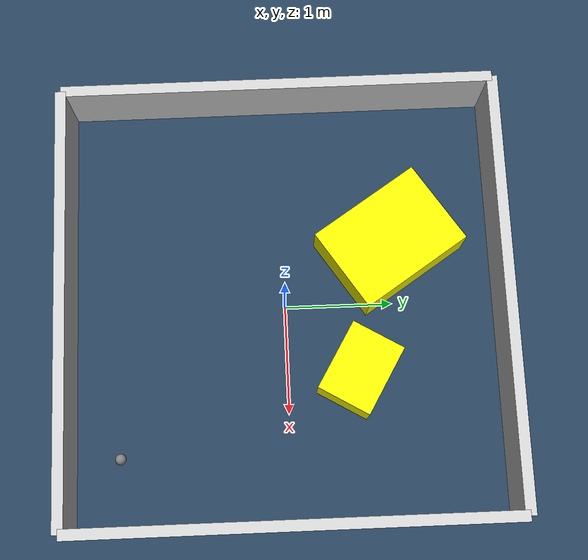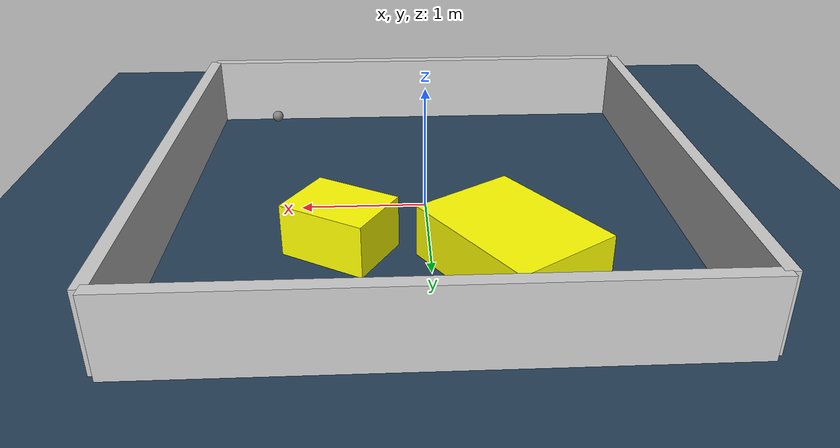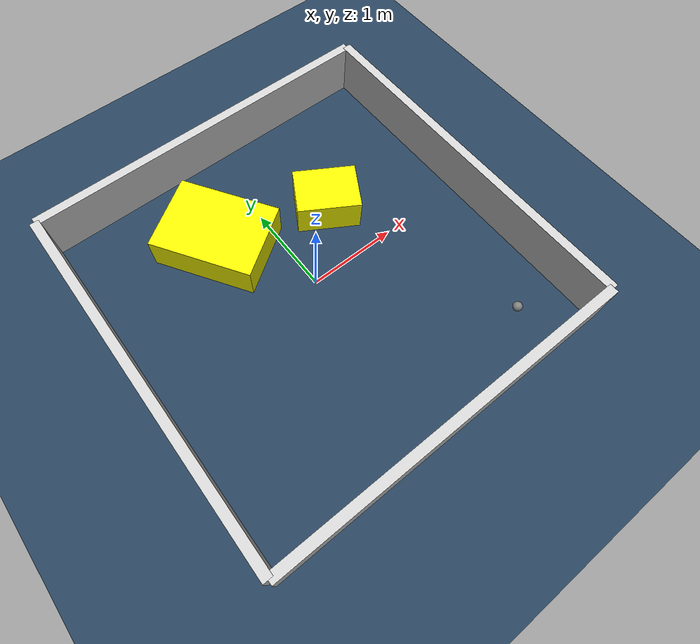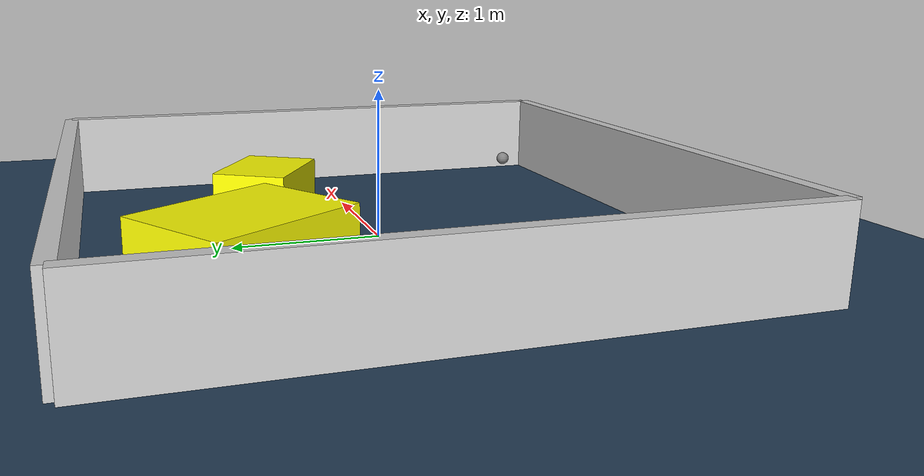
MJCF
<?xml version="1.0" ?>
<mujoco model="generated_environment">
  <option timestep="0.01" integrator="RK4" cone="elliptic"/>
  <default>
    <geom density="1"/>
  </default>
  <asset>
    <texture builtin="gradient" height="3072" rgb1="0.3 0.5 0.7" rgb2="0 0 0" type="skybox" width="512"/>
    <texture builtin="checker" height="300" mark="edge" markrgb="0.8 0.8 0.8" name="groundplane" rgb1="0.2 0.3 0.4" rgb2="0.1 0.2 0.3" type="2d" width="300"/>
    <material name="groundplane" reflectance="0.2" texrepeat="5 5" texture="groundplane" texuniform="true"/>
    <material name="robot" rgba="0.0 1.0 0.0 1"/>
  </asset>
  <worldbody>
    <light dir="0 0 -1" directional="true" pos="0 0 1.5"/>
    <geom condim="4" friction="1.0 0.005 0.001" material="groundplane" name="floor" size="0 0 0.05" type="plane"/>
    <body name="walls">
      <geom name="wall_1" condim="4" pos="-2.0 0.0 0.3" rgba="0.800000011920929 0.800000011920929 0.800000011920929 1.0" size="0.05 2.0 0.3" type="box"/>
      <geom name="wall_2" condim="4" pos="2.0 0.0 0.3" rgba="0.800000011920929 0.800000011920929 0.800000011920929 1.0" size="0.05 2.0 0.3" type="box"/>
      <geom name="wall_3" condim="4" pos="0.0 -2.0 0.3" rgba="0.800000011920929 0.800000011920929 0.800000011920929 1.0" size="2.0 0.05 0.3" type="box"/>
      <geom name="wall_4" condim="4" pos="0.0 2.0 0.3" rgba="0.800000011920929 0.800000011920929 0.800000011920929 1.0" size="2.0 0.05 0.3" type="box"/>
    </body>
    <body name="robot">
      <joint name="joint_x" type="slide" pos="0 0 0" axis="1 0 0"/>
      <joint name="joint_y" type="slide" pos="0 0 0" axis="0 1 0"/>
      <geom name="robot" type="sphere" pos="1.3643852410466502 -1.5217771657734975 0.2" size="0.05" mass="5." friction="1.0 0.005 0.0001" condim="4"/>
      <site name="sensor_ball"/>
    </body>
    <body name="obstacle_1_movable">
      <geom name="obstacle_1_movable" condim="4" pos="-0.5539830226818261 0.9909338780170311 0.2" euler="0 0 213.49412891261142" friction="1.0 0.005 0.001" rgba="1 1 0 1" size="0.4156773176069628 0.5582665995955383 0.2" type="box" mass="0.1"/>
      <joint type="free"/>
    </body>
    <body name="obstacle_2_movable">
      <geom name="obstacle_2_movable" condim="4" pos="0.6510371859943926 0.656068780849917 0.2" euler="0 0 59.46294828064599" friction="1.0 0.005 0.001" rgba="1 1 0 1" size="0.2591558162520886 0.34209395341530685 0.2" type="box" mass="0.1"/>
      <joint type="free"/>
    </body>
  </worldbody>
  <actuator>
    <motor name="actuator_x" joint="joint_x" gear="1" ctrlrange="-1 1"/>
    <motor name="actuator_y" joint="joint_y" gear="1" ctrlrange="-1 1"/>
  </actuator>
</mujoco>
